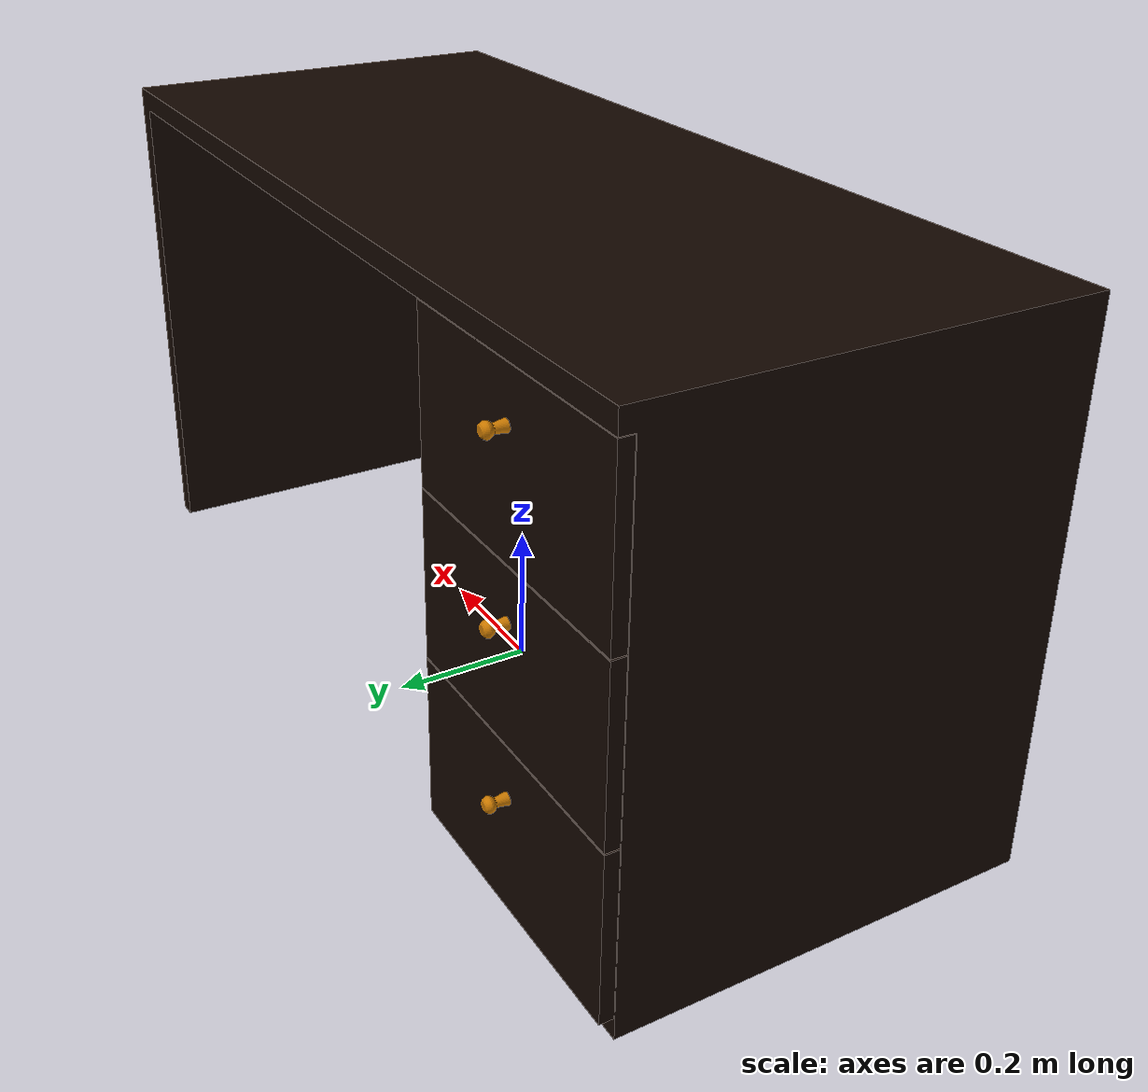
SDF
<?xml version="1.0" ?>
<sdf version="1.0">
  <model name="three_drawer_desk">
    <static>true</static>
    <link name="three_drawer_desk">
      <collision name="three_drawer_desk">
        <pose>0 0 0 0 0 0</pose>
        <geometry>
          <mesh>
            <uri>model://three_drawer_desk/meshes/model.dae</uri>
          </mesh>
        </geometry>
      </collision>

      <visual name="three_drawer_desk_mesh">
	  <cast_shadows>true</cast_shadows>
        <geometry>
          <mesh>
	        <uri>model://three_drawer_desk/meshes/model.dae</uri>
	      </mesh>
        </geometry>
      </visual>
    </link>
  </model>
</sdf>
